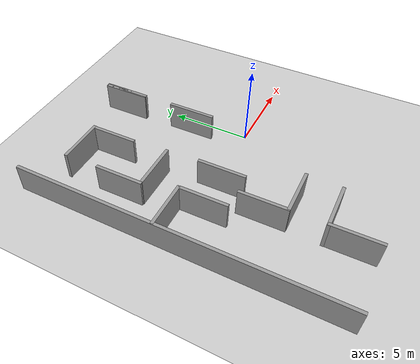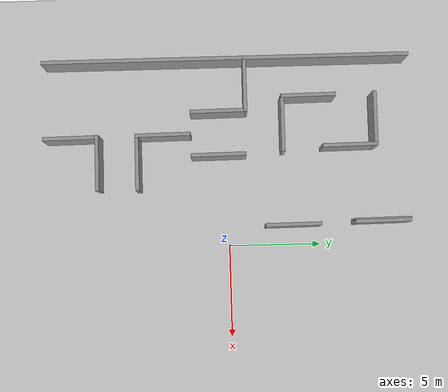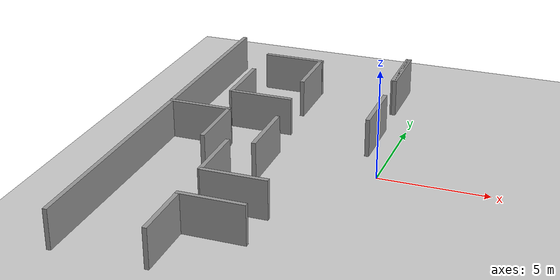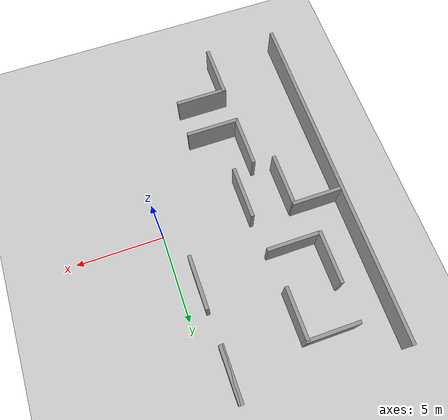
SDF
<sdf version="1.7">
 <world name="default">
  <model name="ground_plane">
   <static>1</static>
   <link name="link">
    <collision name="collision">
     <geometry><plane><normal>0 0 1</normal><size>100 100</size></plane></geometry>
     <surface>
      <contact><collide_bitmask>65535</collide_bitmask></contact>
      <friction><ode><mu>100</mu><mu2>50</mu2></ode></friction>
     </surface>
    </collision>
    <visual name="visual">
     <cast_shadows>0</cast_shadows>
     <geometry><plane><normal>0 0 1</normal><size>100 100</size></plane></geometry>
     <material>
      <script><uri>file://media/materials/scripts/gazebo.material</uri><name>Gazebo/Grey</name></script>
     </material>
    </visual>
   </link>
  </model>
  <model name="my_enviroment_1">
   <link name="link_3_clone_clone">
    <inertial>
     <mass>1</mass>
     <inertia>
      <ixx>0.166667</ixx>
      <ixy>0</ixy>
      <ixz>0</ixz>
      <iyy>0.166667</iyy>
      <iyz>0</iyz>
      <izz>0.166667</izz>
     </inertia>
    </inertial>
    <pose>-12.0008 -13.5299 -0 0 -0 0</pose>
    <visual name="visual">
     <geometry><box><size>3 0.2 1.8</size></box></geometry>
     <material>
      <lighting>1</lighting>
      <script><uri>file://media/materials/scripts/gazebo.material</uri><name>Gazebo/Grey</name></script>
      <shader type="pixel"><normal_map>__default__</normal_map></shader>
      <ambient>0.3 0.3 0.3 1</ambient>
      <diffuse>0.7 0.7 0.7 1</diffuse>
      <specular>0.01 0.01 0.01 1</specular>
      <emissive>0 0 0 1</emissive>
     </material>
    </visual>
    <collision name="collision">
     <geometry><box><size>3 0.2 1.8</size></box></geometry>
     <surface>
      <friction>
       <ode><mu>1</mu><mu2>1</mu2><fdir1>0 0 0</fdir1><slip1>0</slip1><slip2>0</slip2></ode>
       <torsional>
        <coefficient>1</coefficient>
        <patch_radius>0</patch_radius>
        <surface_radius>0</surface_radius>
        <use_patch_radius>1</use_patch_radius>
        <ode><slip>0</slip></ode>
       </torsional>
      </friction>
      <bounce><restitution_coefficient>0</restitution_coefficient><threshold>1e+06</threshold></bounce>
      <contact>
       <collide_without_contact>0</collide_without_contact>
       <collide_without_contact_bitmask>1</collide_without_contact_bitmask>
       <collide_bitmask>1</collide_bitmask>
       <ode>
        <soft_cfm>0</soft_cfm>
        <soft_erp>0.2</soft_erp>
        <kp>1e+13</kp>
        <kd>1</kd>
        <max_vel>0.01</max_vel>
        <min_depth>0</min_depth>
       </ode>
       <bullet>
        <split_impulse>1</split_impulse>
        <split_impulse_penetration_threshold>-0.01</split_impulse_penetration_threshold>
        <soft_cfm>0</soft_cfm>
        <soft_erp>0.2</soft_erp>
        <kp>1e+13</kp>
        <kd>1</kd>
       </bullet>
      </contact>
     </surface>
    </collision>
   </link>
   <link name="link_3_clone_clone_clone">
    <inertial>
     <mass>1</mass>
     <inertia>
      <ixx>0.166667</ixx>
      <ixy>0</ixy>
      <ixz>0</ixz>
      <iyy>0.166667</iyy>
      <iyz>0</iyz>
      <izz>0.166667</izz>
     </inertia>
    </inertial>
    <pose>-11.9455 -11.3645 -0 0 -0 0</pose>
    <visual name="visual">
     <geometry><box><size>3 0.2 1.8</size></box></geometry>
     <material>
      <lighting>1</lighting>
      <script><uri>file://media/materials/scripts/gazebo.material</uri><name>Gazebo/Grey</name></script>
      <shader type="pixel"><normal_map>__default__</normal_map></shader>
      <ambient>0.3 0.3 0.3 1</ambient>
      <diffuse>0.7 0.7 0.7 1</diffuse>
      <specular>0.01 0.01 0.01 1</specular>
      <emissive>0 0 0 1</emissive>
     </material>
    </visual>
    <collision name="collision">
     <geometry><box><size>3 0.2 1.8</size></box></geometry>
     <surface>
      <friction>
       <ode><mu>1</mu><mu2>1</mu2><fdir1>0 0 0</fdir1><slip1>0</slip1><slip2>0</slip2></ode>
       <torsional>
        <coefficient>1</coefficient>
        <patch_radius>0</patch_radius>
        <surface_radius>0</surface_radius>
        <use_patch_radius>1</use_patch_radius>
        <ode><slip>0</slip></ode>
       </torsional>
      </friction>
      <bounce><restitution_coefficient>0</restitution_coefficient><threshold>1e+06</threshold></bounce>
      <contact>
       <collide_without_contact>0</collide_without_contact>
       <collide_without_contact_bitmask>1</collide_without_contact_bitmask>
       <collide_bitmask>1</collide_bitmask>
       <ode>
        <soft_cfm>0</soft_cfm>
        <soft_erp>0.2</soft_erp>
        <kp>1e+13</kp>
        <kd>1</kd>
        <max_vel>0.01</max_vel>
        <min_depth>0</min_depth>
       </ode>
       <bullet>
        <split_impulse>1</split_impulse>
        <split_impulse_penetration_threshold>-0.01</split_impulse_penetration_threshold>
        <soft_cfm>0</soft_cfm>
        <soft_erp>0.2</soft_erp>
        <kp>1e+13</kp>
        <kd>1</kd>
       </bullet>
      </contact>
     </surface>
    </collision>
   </link>
   <link name="link_3_clone_clone_clone_0">
    <inertial>
     <mass>1</mass>
     <inertia>
      <ixx>0.166667</ixx>
      <ixy>0</ixy>
      <ixz>0</ixz>
      <iyy>0.166667</iyy>
      <iyz>0</iyz>
      <izz>0.166667</izz>
     </inertia>
    </inertial>
    <pose>-13.3748 -14.9624 -0 0 0 -1.56054</pose>
    <visual name="visual">
     <geometry><box><size>3 0.2 1.8</size></box></geometry>
     <material>
      <lighting>1</lighting>
      <script><uri>file://media/materials/scripts/gazebo.material</uri><name>Gazebo/Grey</name></script>
      <shader type="pixel"><normal_map>__default__</normal_map></shader>
      <ambient>0.3 0.3 0.3 1</ambient>
      <diffuse>0.7 0.7 0.7 1</diffuse>
      <specular>0.01 0.01 0.01 1</specular>
      <emissive>0 0 0 1</emissive>
     </material>
    </visual>
    <collision name="collision">
     <geometry><box><size>3 0.2 1.8</size></box></geometry>
     <surface>
      <friction>
       <ode><mu>1</mu><mu2>1</mu2><fdir1>0 0 0</fdir1><slip1>0</slip1><slip2>0</slip2></ode>
       <torsional>
        <coefficient>1</coefficient>
        <patch_radius>0</patch_radius>
        <surface_radius>0</surface_radius>
        <use_patch_radius>1</use_patch_radius>
        <ode><slip>0</slip></ode>
       </torsional>
      </friction>
      <bounce><restitution_coefficient>0</restitution_coefficient><threshold>1e+06</threshold></bounce>
      <contact>
       <collide_without_contact>0</collide_without_contact>
       <collide_without_contact_bitmask>1</collide_without_contact_bitmask>
       <collide_bitmask>1</collide_bitmask>
       <ode>
        <soft_cfm>0</soft_cfm>
        <soft_erp>0.2</soft_erp>
        <kp>1e+13</kp>
        <kd>1</kd>
        <max_vel>0.01</max_vel>
        <min_depth>0</min_depth>
       </ode>
       <bullet>
        <split_impulse>1</split_impulse>
        <split_impulse_penetration_threshold>-0.01</split_impulse_penetration_threshold>
        <soft_cfm>0</soft_cfm>
        <soft_erp>0.2</soft_erp>
        <kp>1e+13</kp>
        <kd>1</kd>
       </bullet>
      </contact>
     </surface>
    </collision>
   </link>
   <link name="link_3_clone_clone_clone_0_clone">
    <inertial>
     <mass>1</mass>
     <inertia>
      <ixx>0.166667</ixx>
      <ixy>0</ixy>
      <ixz>0</ixz>
      <iyy>0.166667</iyy>
      <iyz>0</iyz>
      <izz>0.166667</izz>
     </inertia>
    </inertial>
    <pose>-13.436 -9.94989 -0 0 0 -1.56054</pose>
    <visual name="visual">
     <geometry><box><size>3 0.2 1.8</size></box></geometry>
     <material>
      <lighting>1</lighting>
      <script><uri>file://media/materials/scripts/gazebo.material</uri><name>Gazebo/Grey</name></script>
      <shader type="pixel"><normal_map>__default__</normal_map></shader>
      <ambient>0.3 0.3 0.3 1</ambient>
      <diffuse>0.7 0.7 0.7 1</diffuse>
      <specular>0.01 0.01 0.01 1</specular>
      <emissive>0 0 0 1</emissive>
     </material>
    </visual>
    <collision name="collision">
     <geometry><box><size>3 0.2 1.8</size></box></geometry>
     <surface>
      <friction>
       <ode><mu>1</mu><mu2>1</mu2><fdir1>0 0 0</fdir1><slip1>0</slip1><slip2>0</slip2></ode>
       <torsional>
        <coefficient>1</coefficient>
        <patch_radius>0</patch_radius>
        <surface_radius>0</surface_radius>
        <use_patch_radius>1</use_patch_radius>
        <ode><slip>0</slip></ode>
       </torsional>
      </friction>
      <bounce><restitution_coefficient>0</restitution_coefficient><threshold>1e+06</threshold></bounce>
      <contact>
       <collide_without_contact>0</collide_without_contact>
       <collide_without_contact_bitmask>1</collide_without_contact_bitmask>
       <collide_bitmask>1</collide_bitmask>
       <ode>
        <soft_cfm>0</soft_cfm>
        <soft_erp>0.2</soft_erp>
        <kp>1e+13</kp>
        <kd>1</kd>
        <max_vel>0.01</max_vel>
        <min_depth>0</min_depth>
       </ode>
       <bullet>
        <split_impulse>1</split_impulse>
        <split_impulse_penetration_threshold>-0.01</split_impulse_penetration_threshold>
        <soft_cfm>0</soft_cfm>
        <soft_erp>0.2</soft_erp>
        <kp>1e+13</kp>
        <kd>1</kd>
       </bullet>
      </contact>
     </surface>
    </collision>
   </link>
   <link name="link_3_clone_clone_clone_0_clone_clone">
    <inertial>
     <mass>1</mass>
     <inertia>
      <ixx>0.166667</ixx>
      <ixy>0</ixy>
      <ixz>0</ixz>
      <iyy>0.166667</iyy>
      <iyz>0</iyz>
      <izz>0.166667</izz>
     </inertia>
    </inertial>
    <pose>-14.6654 -6.95222 -0 0 0 -1.56054</pose>
    <visual name="visual">
     <geometry><box><size>3 0.2 1.8</size></box></geometry>
     <material>
      <lighting>1</lighting>
      <script><uri>file://media/materials/scripts/gazebo.material</uri><name>Gazebo/Grey</name></script>
      <shader type="pixel"><normal_map>__default__</normal_map></shader>
      <ambient>0.3 0.3 0.3 1</ambient>
      <diffuse>0.7 0.7 0.7 1</diffuse>
      <specular>0.01 0.01 0.01 1</specular>
      <emissive>0 0 0 1</emissive>
     </material>
    </visual>
    <collision name="collision">
     <geometry><box><size>3 0.2 1.8</size></box></geometry>
     <surface>
      <friction>
       <ode><mu>1</mu><mu2>1</mu2><fdir1>0 0 0</fdir1><slip1>0</slip1><slip2>0</slip2></ode>
       <torsional>
        <coefficient>1</coefficient>
        <patch_radius>0</patch_radius>
        <surface_radius>0</surface_radius>
        <use_patch_radius>1</use_patch_radius>
        <ode><slip>0</slip></ode>
       </torsional>
      </friction>
      <bounce><restitution_coefficient>0</restitution_coefficient><threshold>1e+06</threshold></bounce>
      <contact>
       <collide_without_contact>0</collide_without_contact>
       <collide_without_contact_bitmask>1</collide_without_contact_bitmask>
       <collide_bitmask>1</collide_bitmask>
       <ode>
        <soft_cfm>0</soft_cfm>
        <soft_erp>0.2</soft_erp>
        <kp>1e+13</kp>
        <kd>1</kd>
        <max_vel>0.01</max_vel>
        <min_depth>0</min_depth>
       </ode>
       <bullet>
        <split_impulse>1</split_impulse>
        <split_impulse_penetration_threshold>-0.01</split_impulse_penetration_threshold>
        <soft_cfm>0</soft_cfm>
        <soft_erp>0.2</soft_erp>
        <kp>1e+13</kp>
        <kd>1</kd>
       </bullet>
      </contact>
     </surface>
    </collision>
   </link>
   <link name="link_3_clone_clone_clone_0_clone_clone_clone">
    <inertial>
     <mass>1</mass>
     <inertia>
      <ixx>0.166667</ixx>
      <ixy>0</ixy>
      <ixz>0</ixz>
      <iyy>0.166667</iyy>
      <iyz>0</iyz>
      <izz>0.166667</izz>
     </inertia>
    </inertial>
    <pose>-12.2854 -6.94567 -0 0 0 -1.56054</pose>
    <visual name="visual">
     <geometry><box><size>3 0.2 1.8</size></box></geometry>
     <material>
      <lighting>1</lighting>
      <script><uri>file://media/materials/scripts/gazebo.material</uri><name>Gazebo/Grey</name></script>
      <shader type="pixel"><normal_map>__default__</normal_map></shader>
      <ambient>0.3 0.3 0.3 1</ambient>
      <diffuse>0.7 0.7 0.7 1</diffuse>
      <specular>0.01 0.01 0.01 1</specular>
      <emissive>0 0 0 1</emissive>
     </material>
    </visual>
    <collision name="collision">
     <geometry><box><size>3 0.2 1.8</size></box></geometry>
     <surface>
      <friction>
       <ode><mu>1</mu><mu2>1</mu2><fdir1>0 0 0</fdir1><slip1>0</slip1><slip2>0</slip2></ode>
       <torsional>
        <coefficient>1</coefficient>
        <patch_radius>0</patch_radius>
        <surface_radius>0</surface_radius>
        <use_patch_radius>1</use_patch_radius>
        <ode><slip>0</slip></ode>
       </torsional>
      </friction>
      <bounce><restitution_coefficient>0</restitution_coefficient><threshold>1e+06</threshold></bounce>
      <contact>
       <collide_without_contact>0</collide_without_contact>
       <collide_without_contact_bitmask>1</collide_without_contact_bitmask>
       <collide_bitmask>1</collide_bitmask>
       <ode>
        <soft_cfm>0</soft_cfm>
        <soft_erp>0.2</soft_erp>
        <kp>1e+13</kp>
        <kd>1</kd>
        <max_vel>0.01</max_vel>
        <min_depth>0</min_depth>
       </ode>
       <bullet>
        <split_impulse>1</split_impulse>
        <split_impulse_penetration_threshold>-0.01</split_impulse_penetration_threshold>
        <soft_cfm>0</soft_cfm>
        <soft_erp>0.2</soft_erp>
        <kp>1e+13</kp>
        <kd>1</kd>
       </bullet>
      </contact>
     </surface>
    </collision>
   </link>
   <link name="link_3_clone_clone_clone_0_clone_clone_clone_0">
    <inertial>
     <mass>1</mass>
     <inertia>
      <ixx>0.166667</ixx>
      <ixy>0</ixy>
      <ixz>0</ixz>
      <iyy>0.166667</iyy>
      <iyz>0</iyz>
      <izz>0.166667</izz>
     </inertia>
    </inertial>
    <pose>-15.4142 -2.00184 0 0 0 -1.56054</pose>
    <visual name="visual">
     <geometry><box><size>3 0.2 1.8</size></box></geometry>
     <material>
      <lighting>1</lighting>
      <script><uri>file://media/materials/scripts/gazebo.material</uri><name>Gazebo/Grey</name></script>
      <shader type="pixel"><normal_map>__default__</normal_map></shader>
      <ambient>0.3 0.3 0.3 1</ambient>
      <diffuse>0.7 0.7 0.7 1</diffuse>
      <specular>0.01 0.01 0.01 1</specular>
      <emissive>0 0 0 1</emissive>
     </material>
    </visual>
    <collision name="collision">
     <geometry><box><size>3 0.2 1.8</size></box></geometry>
     <surface>
      <friction>
       <ode><mu>1</mu><mu2>1</mu2><fdir1>0 0 0</fdir1><slip1>0</slip1><slip2>0</slip2></ode>
       <torsional>
        <coefficient>1</coefficient>
        <patch_radius>0</patch_radius>
        <surface_radius>0</surface_radius>
        <use_patch_radius>1</use_patch_radius>
        <ode><slip>0</slip></ode>
       </torsional>
      </friction>
      <bounce><restitution_coefficient>0</restitution_coefficient><threshold>1e+06</threshold></bounce>
      <contact>
       <collide_without_contact>0</collide_without_contact>
       <collide_without_contact_bitmask>1</collide_without_contact_bitmask>
       <collide_bitmask>1</collide_bitmask>
       <ode>
        <soft_cfm>0</soft_cfm>
        <soft_erp>0.2</soft_erp>
        <kp>1e+13</kp>
        <kd>1</kd>
        <max_vel>0.01</max_vel>
        <min_depth>0</min_depth>
       </ode>
       <bullet>
        <split_impulse>1</split_impulse>
        <split_impulse_penetration_threshold>-0.01</split_impulse_penetration_threshold>
        <soft_cfm>0</soft_cfm>
        <soft_erp>0.2</soft_erp>
        <kp>1e+13</kp>
        <kd>1</kd>
       </bullet>
      </contact>
     </surface>
    </collision>
   </link>
   <link name="link_3_clone_clone_clone_0_clone_clone_clone_1">
    <inertial>
     <mass>1</mass>
     <inertia>
      <ixx>0.166667</ixx>
      <ixy>0</ixy>
      <ixz>0</ixz>
      <iyy>0.166667</iyy>
      <iyz>0</iyz>
      <izz>0.166667</izz>
     </inertia>
    </inertial>
    <pose>-12.6414 0.2073 0 0 0 -1.56054</pose>
    <visual name="visual">
     <geometry><box><size>3 0.2 1.8</size></box></geometry>
     <material>
      <lighting>1</lighting>
      <script><uri>file://media/materials/scripts/gazebo.material</uri><name>Gazebo/Grey</name></script>
      <shader type="pixel"><normal_map>__default__</normal_map></shader>
      <ambient>0.3 0.3 0.3 1</ambient>
      <diffuse>0.7 0.7 0.7 1</diffuse>
      <specular>0.01 0.01 0.01 1</specular>
      <emissive>0 0 0 1</emissive>
     </material>
    </visual>
    <collision name="collision">
     <geometry><box><size>3 0.2 1.8</size></box></geometry>
     <surface>
      <friction>
       <ode><mu>1</mu><mu2>1</mu2><fdir1>0 0 0</fdir1><slip1>0</slip1><slip2>0</slip2></ode>
       <torsional>
        <coefficient>1</coefficient>
        <patch_radius>0</patch_radius>
        <surface_radius>0</surface_radius>
        <use_patch_radius>1</use_patch_radius>
        <ode><slip>0</slip></ode>
       </torsional>
      </friction>
      <bounce><restitution_coefficient>0</restitution_coefficient><threshold>1e+06</threshold></bounce>
      <contact>
       <collide_without_contact>0</collide_without_contact>
       <collide_without_contact_bitmask>1</collide_without_contact_bitmask>
       <collide_bitmask>1</collide_bitmask>
       <ode>
        <soft_cfm>0</soft_cfm>
        <soft_erp>0.2</soft_erp>
        <kp>1e+13</kp>
        <kd>1</kd>
        <max_vel>0.01</max_vel>
        <min_depth>0</min_depth>
       </ode>
       <bullet>
        <split_impulse>1</split_impulse>
        <split_impulse_penetration_threshold>-0.01</split_impulse_penetration_threshold>
        <soft_cfm>0</soft_cfm>
        <soft_erp>0.2</soft_erp>
        <kp>1e+13</kp>
        <kd>1</kd>
       </bullet>
      </contact>
     </surface>
    </collision>
   </link>
   <link name="link_3_clone_clone_clone_0_clone_clone_clone_clone_0">
    <inertial>
     <mass>1</mass>
     <inertia>
      <ixx>0.166667</ixx>
      <ixy>0</ixy>
      <ixz>0</ixz>
      <iyy>0.166667</iyy>
      <iyz>0</iyz>
      <izz>0.166667</izz>
     </inertia>
    </inertial>
    <pose>-8.4012 -2.99254 0 0 0 -1.56054</pose>
    <visual name="visual">
     <geometry><box><size>3 0.2 1.8</size></box></geometry>
     <material>
      <lighting>1</lighting>
      <script><uri>file://media/materials/scripts/gazebo.material</uri><name>Gazebo/Grey</name></script>
      <shader type="pixel"><normal_map>__default__</normal_map></shader>
      <ambient>0.3 0.3 0.3 1</ambient>
      <diffuse>0.7 0.7 0.7 1</diffuse>
      <specular>0.01 0.01 0.01 1</specular>
      <emissive>0 0 0 1</emissive>
     </material>
    </visual>
    <collision name="collision">
     <geometry><box><size>3 0.2 1.8</size></box></geometry>
     <surface>
      <friction>
       <ode><mu>1</mu><mu2>1</mu2><fdir1>0 0 0</fdir1><slip1>0</slip1><slip2>0</slip2></ode>
       <torsional>
        <coefficient>1</coefficient>
        <patch_radius>0</patch_radius>
        <surface_radius>0</surface_radius>
        <use_patch_radius>1</use_patch_radius>
        <ode><slip>0</slip></ode>
       </torsional>
      </friction>
      <bounce><restitution_coefficient>0</restitution_coefficient><threshold>1e+06</threshold></bounce>
      <contact>
       <collide_without_contact>0</collide_without_contact>
       <collide_without_contact_bitmask>1</collide_without_contact_bitmask>
       <collide_bitmask>1</collide_bitmask>
       <ode>
        <soft_cfm>0</soft_cfm>
        <soft_erp>0.2</soft_erp>
        <kp>1e+13</kp>
        <kd>1</kd>
        <max_vel>0.01</max_vel>
        <min_depth>0</min_depth>
       </ode>
       <bullet>
        <split_impulse>1</split_impulse>
        <split_impulse_penetration_threshold>-0.01</split_impulse_penetration_threshold>
        <soft_cfm>0</soft_cfm>
        <soft_erp>0.2</soft_erp>
        <kp>1e+13</kp>
        <kd>1</kd>
       </bullet>
      </contact>
     </surface>
    </collision>
   </link>
   <link name="link_3_clone_clone_clone_0_clone_clone_clone_clone_1">
    <inertial>
     <mass>1</mass>
     <inertia>
      <ixx>0.166667</ixx>
      <ixy>0</ixy>
      <ixz>0</ixz>
      <iyy>0.166667</iyy>
      <iyz>0</iyz>
      <izz>0.166667</izz>
     </inertia>
    </inertial>
    <pose>-8.48754 1.84275 0 0 0 -1.56054</pose>
    <visual name="visual">
     <geometry><box><size>3 0.2 1.8</size></box></geometry>
     <material>
      <lighting>1</lighting>
      <script><uri>file://media/materials/scripts/gazebo.material</uri><name>Gazebo/Grey</name></script>
      <shader type="pixel"><normal_map>__default__</normal_map></shader>
      <ambient>0.3 0.3 0.3 1</ambient>
      <diffuse>0.7 0.7 0.7 1</diffuse>
      <specular>0.01 0.01 0.01 1</specular>
      <emissive>0 0 0 1</emissive>
     </material>
    </visual>
    <collision name="collision">
     <geometry><box><size>3 0.2 1.8</size></box></geometry>
     <surface>
      <friction>
       <ode><mu>1</mu><mu2>1</mu2><fdir1>0 0 0</fdir1><slip1>0</slip1><slip2>0</slip2></ode>
       <torsional>
        <coefficient>1</coefficient>
        <patch_radius>0</patch_radius>
        <surface_radius>0</surface_radius>
        <use_patch_radius>1</use_patch_radius>
        <ode><slip>0</slip></ode>
       </torsional>
      </friction>
      <bounce><restitution_coefficient>0</restitution_coefficient><threshold>1e+06</threshold></bounce>
      <contact>
       <collide_without_contact>0</collide_without_contact>
       <collide_without_contact_bitmask>1</collide_without_contact_bitmask>
       <collide_bitmask>1</collide_bitmask>
       <ode>
        <soft_cfm>0</soft_cfm>
        <soft_erp>0.2</soft_erp>
        <kp>1e+13</kp>
        <kd>1</kd>
        <max_vel>0.01</max_vel>
        <min_depth>0</min_depth>
       </ode>
       <bullet>
        <split_impulse>1</split_impulse>
        <split_impulse_penetration_threshold>-0.01</split_impulse_penetration_threshold>
        <soft_cfm>0</soft_cfm>
        <soft_erp>0.2</soft_erp>
        <kp>1e+13</kp>
        <kd>1</kd>
       </bullet>
      </contact>
     </surface>
    </collision>
   </link>
   <link name="link_3_clone_clone_clone_0_clone_clone_clone_clone_4">
    <inertial>
     <mass>1</mass>
     <inertia>
      <ixx>0.166667</ixx>
      <ixy>0</ixy>
      <ixz>0</ixz>
      <iyy>0.166667</iyy>
      <iyz>0</iyz>
      <izz>0.166667</izz>
     </inertia>
    </inertial>
    <pose>-8.56538 1.84342 0 0 0 -1.56054</pose>
    <visual name="visual">
     <geometry><box><size>3 0.2 1.8</size></box></geometry>
     <material>
      <lighting>1</lighting>
      <script><uri>file://media/materials/scripts/gazebo.material</uri><name>Gazebo/Grey</name></script>
      <shader type="pixel"><normal_map>__default__</normal_map></shader>
      <ambient>0.3 0.3 0.3 1</ambient>
      <diffuse>0.7 0.7 0.7 1</diffuse>
      <specular>0.01 0.01 0.01 1</specular>
      <emissive>0 0 0 1</emissive>
     </material>
    </visual>
    <collision name="collision">
     <geometry><box><size>3 0.2 1.8</size></box></geometry>
     <surface>
      <friction>
       <ode><mu>1</mu><mu2>1</mu2><fdir1>0 0 0</fdir1><slip1>0</slip1><slip2>0</slip2></ode>
       <torsional>
        <coefficient>1</coefficient>
        <patch_radius>0</patch_radius>
        <surface_radius>0</surface_radius>
        <use_patch_radius>1</use_patch_radius>
        <ode><slip>0</slip></ode>
       </torsional>
      </friction>
      <bounce><restitution_coefficient>0</restitution_coefficient><threshold>1e+06</threshold></bounce>
      <contact>
       <collide_without_contact>0</collide_without_contact>
       <collide_without_contact_bitmask>1</collide_without_contact_bitmask>
       <collide_bitmask>1</collide_bitmask>
       <ode>
        <soft_cfm>0</soft_cfm>
        <soft_erp>0.2</soft_erp>
        <kp>1e+13</kp>
        <kd>1</kd>
        <max_vel>0.01</max_vel>
        <min_depth>0</min_depth>
       </ode>
       <bullet>
        <split_impulse>1</split_impulse>
        <split_impulse_penetration_threshold>-0.01</split_impulse_penetration_threshold>
        <soft_cfm>0</soft_cfm>
        <soft_erp>0.2</soft_erp>
        <kp>1e+13</kp>
        <kd>1</kd>
       </bullet>
      </contact>
     </surface>
    </collision>
   </link>
   <link name="link_3_clone_clone_clone_clone">
    <inertial>
     <mass>1</mass>
     <inertia>
      <ixx>0.166667</ixx>
      <ixy>0</ixy>
      <ixz>0</ixz>
      <iyy>0.166667</iyy>
      <iyz>0</iyz>
      <izz>0.166667</izz>
     </inertia>
    </inertial>
    <pose>-16.1026 -5.43373 0 0 -0 0</pose>
    <visual name="visual">
     <geometry><box><size>3 0.2 1.8</size></box></geometry>
     <material>
      <lighting>1</lighting>
      <script><uri>file://media/materials/scripts/gazebo.material</uri><name>Gazebo/Grey</name></script>
      <shader type="pixel"><normal_map>__default__</normal_map></shader>
      <ambient>0.3 0.3 0.3 1</ambient>
      <diffuse>0.7 0.7 0.7 1</diffuse>
      <specular>0.01 0.01 0.01 1</specular>
      <emissive>0 0 0 1</emissive>
     </material>
    </visual>
    <collision name="collision">
     <geometry><box><size>3 0.2 1.8</size></box></geometry>
     <surface>
      <friction>
       <ode><mu>1</mu><mu2>1</mu2><fdir1>0 0 0</fdir1><slip1>0</slip1><slip2>0</slip2></ode>
       <torsional>
        <coefficient>1</coefficient>
        <patch_radius>0</patch_radius>
        <surface_radius>0</surface_radius>
        <use_patch_radius>1</use_patch_radius>
        <ode><slip>0</slip></ode>
       </torsional>
      </friction>
      <bounce><restitution_coefficient>0</restitution_coefficient><threshold>1e+06</threshold></bounce>
      <contact>
       <collide_without_contact>0</collide_without_contact>
       <collide_without_contact_bitmask>1</collide_without_contact_bitmask>
       <collide_bitmask>1</collide_bitmask>
       <ode>
        <soft_cfm>0</soft_cfm>
        <soft_erp>0.2</soft_erp>
        <kp>1e+13</kp>
        <kd>1</kd>
        <max_vel>0.01</max_vel>
        <min_depth>0</min_depth>
       </ode>
       <bullet>
        <split_impulse>1</split_impulse>
        <split_impulse_penetration_threshold>-0.01</split_impulse_penetration_threshold>
        <soft_cfm>0</soft_cfm>
        <soft_erp>0.2</soft_erp>
        <kp>1e+13</kp>
        <kd>1</kd>
       </bullet>
      </contact>
     </surface>
    </collision>
   </link>
   <link name="link_3_clone_clone_clone_clone_0">
    <inertial>
     <mass>1</mass>
     <inertia>
      <ixx>0.166667</ixx>
      <ixy>0</ixy>
      <ixz>0</ixz>
      <iyy>0.166667</iyy>
      <iyz>0</iyz>
      <izz>0.166667</izz>
     </inertia>
    </inertial>
    <pose>-13.875 -3.43045 0 0 -0 0</pose>
    <visual name="visual">
     <geometry><box><size>3 0.2 1.8</size></box></geometry>
     <material>
      <lighting>1</lighting>
      <script><uri>file://media/materials/scripts/gazebo.material</uri><name>Gazebo/Grey</name></script>
      <shader type="pixel"><normal_map>__default__</normal_map></shader>
      <ambient>0.3 0.3 0.3 1</ambient>
      <diffuse>0.7 0.7 0.7 1</diffuse>
      <specular>0.01 0.01 0.01 1</specular>
      <emissive>0 0 0 1</emissive>
     </material>
    </visual>
    <collision name="collision">
     <geometry><box><size>3 0.2 1.8</size></box></geometry>
     <surface>
      <friction>
       <ode><mu>1</mu><mu2>1</mu2><fdir1>0 0 0</fdir1><slip1>0</slip1><slip2>0</slip2></ode>
       <torsional>
        <coefficient>1</coefficient>
        <patch_radius>0</patch_radius>
        <surface_radius>0</surface_radius>
        <use_patch_radius>1</use_patch_radius>
        <ode><slip>0</slip></ode>
       </torsional>
      </friction>
      <bounce><restitution_coefficient>0</restitution_coefficient><threshold>1e+06</threshold></bounce>
      <contact>
       <collide_without_contact>0</collide_without_contact>
       <collide_without_contact_bitmask>1</collide_without_contact_bitmask>
       <collide_bitmask>1</collide_bitmask>
       <ode>
        <soft_cfm>0</soft_cfm>
        <soft_erp>0.2</soft_erp>
        <kp>1e+13</kp>
        <kd>1</kd>
        <max_vel>0.01</max_vel>
        <min_depth>0</min_depth>
       </ode>
       <bullet>
        <split_impulse>1</split_impulse>
        <split_impulse_penetration_threshold>-0.01</split_impulse_penetration_threshold>
        <soft_cfm>0</soft_cfm>
        <soft_erp>0.2</soft_erp>
        <kp>1e+13</kp>
        <kd>1</kd>
       </bullet>
      </contact>
     </surface>
    </collision>
   </link>
   <link name="link_3_clone_clone_clone_clone_0_clone">
    <inertial>
     <mass>1</mass>
     <inertia>
      <ixx>0.166667</ixx>
      <ixy>0</ixy>
      <ixz>0</ixz>
      <iyy>0.166667</iyy>
      <iyz>0</iyz>
      <izz>0.166667</izz>
     </inertia>
    </inertial>
    <pose>-14.0451 1.60228 0 0 -0 0</pose>
    <visual name="visual">
     <geometry><box><size>3 0.2 1.8</size></box></geometry>
     <material>
      <lighting>1</lighting>
      <script><uri>file://media/materials/scripts/gazebo.material</uri><name>Gazebo/Grey</name></script>
      <shader type="pixel"><normal_map>__default__</normal_map></shader>
      <ambient>0.3 0.3 0.3 1</ambient>
      <diffuse>0.7 0.7 0.7 1</diffuse>
      <specular>0.01 0.01 0.01 1</specular>
      <emissive>0 0 0 1</emissive>
     </material>
    </visual>
    <collision name="collision">
     <geometry><box><size>3 0.2 1.8</size></box></geometry>
     <surface>
      <friction>
       <ode><mu>1</mu><mu2>1</mu2><fdir1>0 0 0</fdir1><slip1>0</slip1><slip2>0</slip2></ode>
       <torsional>
        <coefficient>1</coefficient>
        <patch_radius>0</patch_radius>
        <surface_radius>0</surface_radius>
        <use_patch_radius>1</use_patch_radius>
        <ode><slip>0</slip></ode>
       </torsional>
      </friction>
      <bounce><restitution_coefficient>0</restitution_coefficient><threshold>1e+06</threshold></bounce>
      <contact>
       <collide_without_contact>0</collide_without_contact>
       <collide_without_contact_bitmask>1</collide_without_contact_bitmask>
       <collide_bitmask>1</collide_bitmask>
       <ode>
        <soft_cfm>0</soft_cfm>
        <soft_erp>0.2</soft_erp>
        <kp>1e+13</kp>
        <kd>1</kd>
        <max_vel>0.01</max_vel>
        <min_depth>0</min_depth>
       </ode>
       <bullet>
        <split_impulse>1</split_impulse>
        <split_impulse_penetration_threshold>-0.01</split_impulse_penetration_threshold>
        <soft_cfm>0</soft_cfm>
        <soft_erp>0.2</soft_erp>
        <kp>1e+13</kp>
        <kd>1</kd>
       </bullet>
      </contact>
     </surface>
    </collision>
   </link>
   <link name="link_4_clone">
    <inertial>
     <mass>1</mass>
     <inertia>
      <ixx>0.166667</ixx>
      <ixy>0</ixy>
      <ixz>0</ixz>
      <iyy>0.166667</iyy>
      <iyz>0</iyz>
      <izz>0.166667</izz>
     </inertia>
    </inertial>
    <pose>-17.5471 -6.49402 0 0 -0 0</pose>
    <visual name="visual">
     <geometry><box><size>0.2 20 1.8</size></box></geometry>
     <material>
      <lighting>1</lighting>
      <script><uri>file://media/materials/scripts/gazebo.material</uri><name>Gazebo/Grey</name></script>
      <shader type="pixel"><normal_map>__default__</normal_map></shader>
      <ambient>0.3 0.3 0.3 1</ambient>
      <diffuse>0.7 0.7 0.7 1</diffuse>
      <specular>0.01 0.01 0.01 1</specular>
      <emissive>0 0 0 1</emissive>
     </material>
    </visual>
    <collision name="collision">
     <geometry><box><size>0.2 20 1.8</size></box></geometry>
     <surface>
      <friction>
       <ode><mu>1</mu><mu2>1</mu2><fdir1>0 0 0</fdir1><slip1>0</slip1><slip2>0</slip2></ode>
       <torsional>
        <coefficient>1</coefficient>
        <patch_radius>0</patch_radius>
        <surface_radius>0</surface_radius>
        <use_patch_radius>1</use_patch_radius>
        <ode><slip>0</slip></ode>
       </torsional>
      </friction>
      <bounce><restitution_coefficient>0</restitution_coefficient><threshold>1e+06</threshold></bounce>
      <contact>
       <collide_without_contact>0</collide_without_contact>
       <collide_without_contact_bitmask>1</collide_without_contact_bitmask>
       <collide_bitmask>1</collide_bitmask>
       <ode>
        <soft_cfm>0</soft_cfm>
        <soft_erp>0.2</soft_erp>
        <kp>1e+13</kp>
        <kd>1</kd>
        <max_vel>0.01</max_vel>
        <min_depth>0</min_depth>
       </ode>
       <bullet>
        <split_impulse>1</split_impulse>
        <split_impulse_penetration_threshold>-0.01</split_impulse_penetration_threshold>
        <soft_cfm>0</soft_cfm>
        <soft_erp>0.2</soft_erp>
        <kp>1e+13</kp>
        <kd>1</kd>
       </bullet>
      </contact>
     </surface>
    </collision>
   </link>
   <static>1</static>
   <pose>7.35623 6.44717 0.886977 0 -0 0</pose>
  </model>
 </world>
</sdf>
